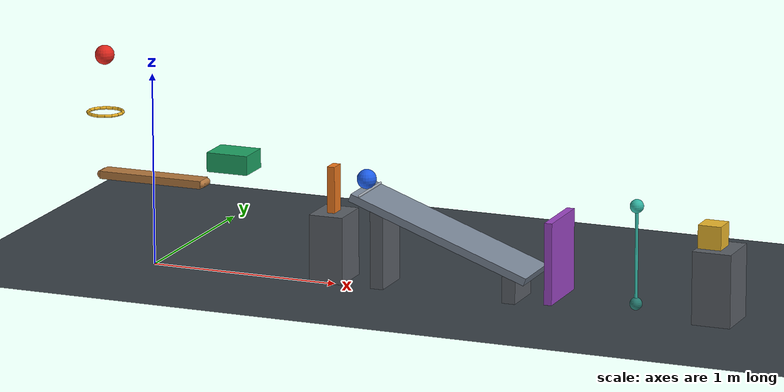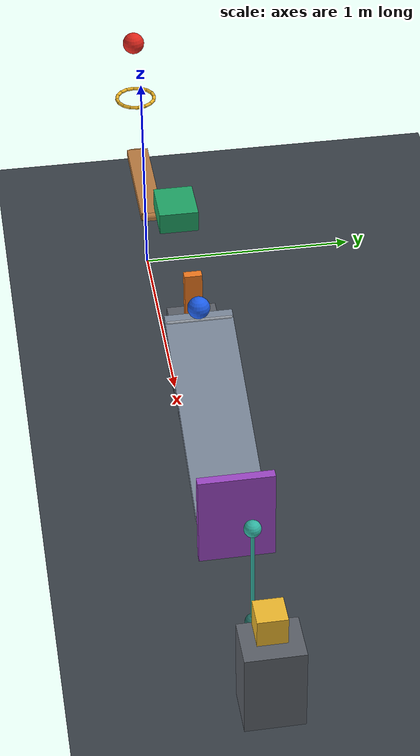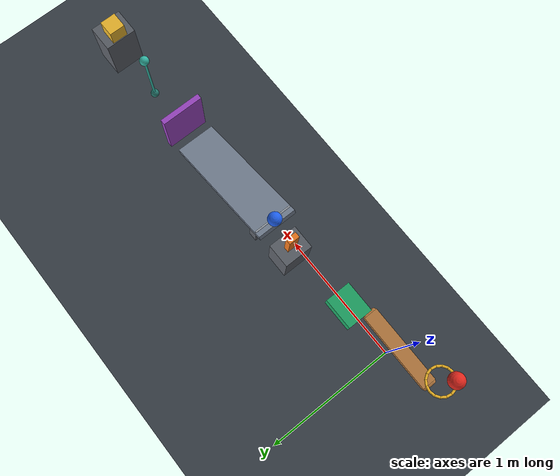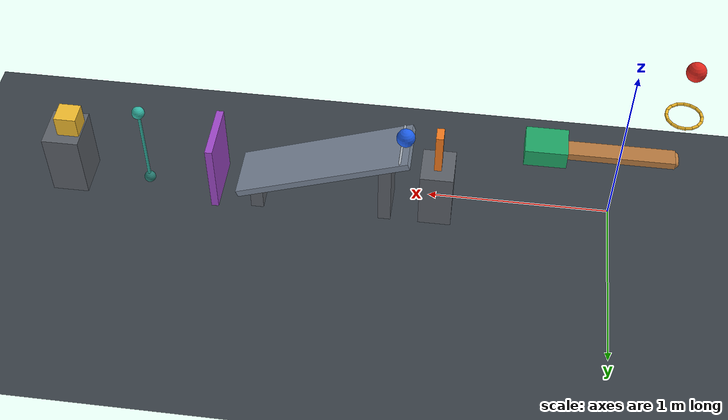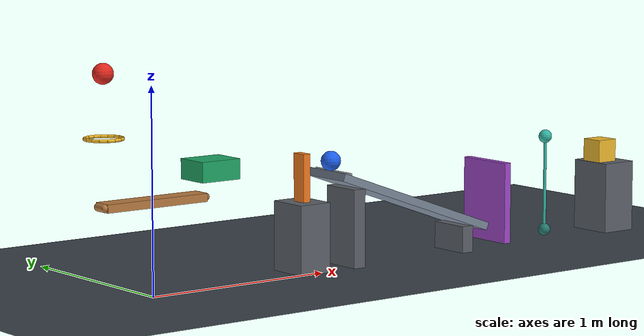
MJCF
<mujoco model="revised_gravity_chain_reaction">
  <compiler angle="degree" autolimits="true" inertiafromgeom="auto"/>
  <option timestep="0.002" gravity="0 0 -9.81" integrator="implicitfast" solver="Newton" cone="elliptic" iterations="100" tolerance="1e-10"/>

  <!-- Contact damping ratio 0.716 approximates restitution 0.04. -->
  <!-- Sliding friction is 0.72; torsional and rolling friction dissipate residual ball motion. -->
  <!-- All bodies start at rest. No actuators or prescribed motions are used. -->

  <visual>
    <headlight ambient="0.35 0.35 0.35" diffuse="0.7 0.7 0.7" specular="0.2 0.2 0.2"/>
  </visual>

  <worldbody>
    <light name="scene_light" pos="1 -2 4" dir="0 0 -1" directional="true"/>
    <camera name="overview" pos="1.4 -4.5 2.8" xyaxes="1 0 0 0 0.45 0.893"/>

    <geom name="floor" type="plane" pos="0 0 0" size="6 4 0.1" friction="0.72 0.005 0.002" condim="6" solref="0.008 0.716" solimp="0.95 0.99 0.001" rgba="0.22 0.25 0.28 1"/>

    <!-- Ball center starts 0.30 m above the ring plane.
         Initial lever contact occurs with its center 0.25 m below that plane. -->
    <body name="ball1" pos="-0.265 0 1.075">
      <freejoint name="ball1_free"/>
      <geom name="ball1_sphere" type="sphere" size="0.05" mass="0.20" friction="0.72 0.005 0.002" condim="6" solref="0.008 0.716" solimp="0.95 0.99 0.001" rgba="0.9 0.16 0.12 1"/>
    </body>

    <!-- Horizontal ring with approximately 0.160 m clear diameter. -->
    <body name="ring1" pos="-0.265 0 0.775">
      <geom name="ring1_segment00" type="capsule" fromto="0.089724 0 0 0.082894 0.034336 0" size="0.008" friction="0.72 0.005 0.002" condim="6" solref="0.008 0.716" solimp="0.95 0.99 0.001" rgba="0.95 0.72 0.15 1"/>
      <geom name="ring1_segment01" type="capsule" fromto="0.082894 0.034336 0 0.063444 0.063444 0" size="0.008" friction="0.72 0.005 0.002" condim="6" solref="0.008 0.716" solimp="0.95 0.99 0.001" rgba="0.95 0.72 0.15 1"/>
      <geom name="ring1_segment02" type="capsule" fromto="0.063444 0.063444 0 0.034336 0.082894 0" size="0.008" friction="0.72 0.005 0.002" condim="6" solref="0.008 0.716" solimp="0.95 0.99 0.001" rgba="0.95 0.72 0.15 1"/>
      <geom name="ring1_segment03" type="capsule" fromto="0.034336 0.082894 0 0 0.089724 0" size="0.008" friction="0.72 0.005 0.002" condim="6" solref="0.008 0.716" solimp="0.95 0.99 0.001" rgba="0.95 0.72 0.15 1"/>
      <geom name="ring1_segment04" type="capsule" fromto="0 0.089724 0 -0.034336 0.082894 0" size="0.008" friction="0.72 0.005 0.002" condim="6" solref="0.008 0.716" solimp="0.95 0.99 0.001" rgba="0.95 0.72 0.15 1"/>
      <geom name="ring1_segment05" type="capsule" fromto="-0.034336 0.082894 0 -0.063444 0.063444 0" size="0.008" friction="0.72 0.005 0.002" condim="6" solref="0.008 0.716" solimp="0.95 0.99 0.001" rgba="0.95 0.72 0.15 1"/>
      <geom name="ring1_segment06" type="capsule" fromto="-0.063444 0.063444 0 -0.082894 0.034336 0" size="0.008" friction="0.72 0.005 0.002" condim="6" solref="0.008 0.716" solimp="0.95 0.99 0.001" rgba="0.95 0.72 0.15 1"/>
      <geom name="ring1_segment07" type="capsule" fromto="-0.082894 0.034336 0 -0.089724 0 0" size="0.008" friction="0.72 0.005 0.002" condim="6" solref="0.008 0.716" solimp="0.95 0.99 0.001" rgba="0.95 0.72 0.15 1"/>
      <geom name="ring1_segment08" type="capsule" fromto="-0.089724 0 0 -0.082894 -0.034336 0" size="0.008" friction="0.72 0.005 0.002" condim="6" solref="0.008 0.716" solimp="0.95 0.99 0.001" rgba="0.95 0.72 0.15 1"/>
      <geom name="ring1_segment09" type="capsule" fromto="-0.082894 -0.034336 0 -0.063444 -0.063444 0" size="0.008" friction="0.72 0.005 0.002" condim="6" solref="0.008 0.716" solimp="0.95 0.99 0.001" rgba="0.95 0.72 0.15 1"/>
      <geom name="ring1_segment10" type="capsule" fromto="-0.063444 -0.063444 0 -0.034336 -0.082894 0" size="0.008" friction="0.72 0.005 0.002" condim="6" solref="0.008 0.716" solimp="0.95 0.99 0.001" rgba="0.95 0.72 0.15 1"/>
      <geom name="ring1_segment11" type="capsule" fromto="-0.034336 -0.082894 0 0 -0.089724 0" size="0.008" friction="0.72 0.005 0.002" condim="6" solref="0.008 0.716" solimp="0.95 0.99 0.001" rgba="0.95 0.72 0.15 1"/>
      <geom name="ring1_segment12" type="capsule" fromto="0 -0.089724 0 0.034336 -0.082894 0" size="0.008" friction="0.72 0.005 0.002" condim="6" solref="0.008 0.716" solimp="0.95 0.99 0.001" rgba="0.95 0.72 0.15 1"/>
      <geom name="ring1_segment13" type="capsule" fromto="0.034336 -0.082894 0 0.063444 -0.063444 0" size="0.008" friction="0.72 0.005 0.002" condim="6" solref="0.008 0.716" solimp="0.95 0.99 0.001" rgba="0.95 0.72 0.15 1"/>
      <geom name="ring1_segment14" type="capsule" fromto="0.063444 -0.063444 0 0.082894 -0.034336 0" size="0.008" friction="0.72 0.005 0.002" condim="6" solref="0.008 0.716" solimp="0.95 0.99 0.001" rgba="0.95 0.72 0.15 1"/>
      <geom name="ring1_segment15" type="capsule" fromto="0.082894 -0.034336 0 0.089724 0 0" size="0.008" friction="0.72 0.005 0.002" condim="6" solref="0.008 0.716" solimp="0.95 0.99 0.001" rgba="0.95 0.72 0.15 1"/>
    </body>

    <!-- Center-weighted lever with overall envelope 0.60 x 0.10 x 0.04 m. -->
    <body name="lever1" pos="0 0 0.455">
      <inertial pos="0 0 0" mass="0.50" diaginertia="0.0005 0.0060 0.0061"/>
      <joint name="lever1_hinge" type="hinge" axis="0 -1 0" range="0 45" damping="0.04" solreflimit="0.004 1" solimplimit="0.99 0.999 0.001"/>
      <geom name="lever1_bar" type="box" size="0.28 0.05 0.02" density="0" friction="0.72 0.005 0.002" condim="6" solref="0.008 0.716" solimp="0.95 0.99 0.001" rgba="0.72 0.48 0.25 1"/>
      <geom name="lever1_left_end" type="capsule" fromto="-0.28 -0.03 0 -0.28 0.03 0" size="0.02" density="0" friction="0.72 0.005 0.002" condim="6" solref="0.008 0.716" solimp="0.95 0.99 0.001" rgba="0.72 0.48 0.25 1"/>
      <geom name="lever1_right_end" type="capsule" fromto="0.28 -0.03 0 0.28 0.03 0" size="0.02" density="0" friction="0.72 0.005 0.002" condim="6" solref="0.008 0.716" solimp="0.95 0.99 0.001" rgba="0.72 0.48 0.25 1"/>
    </body>

    <!-- The rounded lever end strikes the cart's lower-left corner.
         The cart's bottom strikes domino1 approximately 0.164 m above its base. -->
    <body name="cart1" pos="0.40306668 0.10 0.56362149">
      <joint name="cart1_slide" type="slide" axis="1 0 0" range="0 0.50" damping="0.20" solreflimit="0.004 1" solimplimit="0.99 0.999 0.001"/>
      <geom name="cart1_box" type="box" size="0.11 0.09 0.05" mass="0.50" friction="0.72 0.005 0.002" condim="6" solref="0.008 0.716" solimp="0.95 0.99 0.001" rgba="0.12 0.65 0.40 1"/>
    </body>

    <body name="domino_support" pos="0.95306668 0.10 0.175">
      <geom name="domino_support_box" type="box" size="0.09 0.11 0.175" friction="0.72 0.005 0.002" condim="6" solref="0.008 0.716" solimp="0.95 0.99 0.001" rgba="0.36 0.38 0.41 1"/>
    </body>

    <!-- Domino dimensions are 0.04 m along travel, 0.08 m transverse, and 0.24 m vertical.
         Cart-to-domino face clearance is initially 0.42 m. -->
    <body name="domino1" pos="0.95306668 0.10 0.470">
      <freejoint name="domino1_free"/>
      <geom name="domino1_box" type="box" size="0.02 0.04 0.12" mass="0.25" friction="0.72 0.005 0.002" condim="6" solref="0.008 0.716" solimp="0.95 0.99 0.001" rgba="0.95 0.48 0.12 1"/>
    </body>

    <!-- Domino-to-ball center spacing along travel is 0.18 m. -->
    <body name="ball2" pos="1.13306668 0.10 0.536130">
      <freejoint name="ball2_free"/>
      <geom name="ball2_sphere" type="sphere" size="0.05" mass="0.20" friction="0.72 0.005 0.002" condim="6" solref="0.008 0.716" solimp="0.95 0.99 0.001" rgba="0.12 0.38 0.94 1"/>
    </body>

    <!-- Ramp surface is 1.00 m long, 0.30 m wide, and inclined at 20 degrees.
         Its low surface edge is x=2.04775930, z=0.15.
         The launch lip holds ball2 until domino contact. -->
    <body name="ramp1" pos="0 0 0">
      <geom name="ramp1_surface" type="box" pos="1.57107259 0.10 0.30221622" quat="0.984807753 0 0.173648178 0" size="0.50 0.15 0.02" friction="0.72 0.005 0.002" condim="6" solref="0.008 0.716" solimp="0.95 0.99 0.001" rgba="0.48 0.53 0.60 1"/>
      <geom name="ramp1_launch_lip" type="capsule" fromto="1.150570 -0.04 0.482935 1.150570 0.24 0.482935" size="0.006" friction="0.72 0.005 0.002" condim="6" solref="0.008 0.716" solimp="0.95 0.99 0.001" rgba="0.65 0.68 0.72 1"/>
      <geom name="ramp1_high_leg" type="box" pos="1.23 0.10 0.1985" size="0.035 0.11 0.1985" friction="0.72 0.005 0.002" condim="6" solref="0.008 0.716" solimp="0.95 0.99 0.001" rgba="0.36 0.38 0.41 1"/>
      <geom name="ramp1_low_leg" type="box" pos="1.94 0.10 0.069" size="0.035 0.11 0.069" friction="0.72 0.005 0.002" condim="6" solref="0.008 0.716" solimp="0.95 0.99 0.001" rgba="0.36 0.38 0.41 1"/>
    </body>

    <!-- Bottom-hinged, top-weighted panel: 0.42 m high, 0.32 m wide, 0.04 m thick.
         Its near face is 0.10 m beyond the ramp's low edge. -->
    <body name="door1" pos="2.16775930 0.10 0.030">
      <inertial pos="0 0 0.390" mass="0.45" diaginertia="0.0041 0.00035 0.0040"/>
      <joint name="door1_hinge" type="hinge" axis="0 1 0" range="0 70" damping="0.04" solreflimit="0.004 1" solimplimit="0.99 0.999 0.001"/>
      <geom name="door1_panel" type="box" pos="0 0 0.21" size="0.02 0.16 0.21" density="0" friction="0.72 0.005 0.002" condim="6" solref="0.008 0.716" solimp="0.95 0.99 0.001" rgba="0.62 0.28 0.78 1"/>
    </body>

    <body name="pendulum1" pos="2.57475930 0.10 0.040">
      <inertial pos="0 0 0.25" mass="0.35" diaginertia="0.00735 0.00735 0.00008"/>
      <joint name="pendulum1_hinge" type="hinge" axis="0 1 0" range="0 38" damping="0.04" solreflimit="0.004 1" solimplimit="0.99 0.999 0.001"/>
      <geom name="pendulum1_rod" type="capsule" fromto="0 0 0 0 0 0.50" size="0.008" density="0" friction="0.72 0.005 0.002" condim="6" solref="0.008 0.716" solimp="0.95 0.99 0.001" rgba="0.20 0.72 0.65 1"/>
      <geom name="pendulum1_hub" type="sphere" pos="0 0 0" size="0.032" density="0" friction="0.72 0.005 0.002" condim="6" solref="0.008 0.716" solimp="0.95 0.99 0.001" rgba="0.15 0.48 0.44 1"/>
      <geom name="pendulum1_striker" type="sphere" pos="0 0 0.50" size="0.035" density="0" friction="0.72 0.005 0.002" condim="6" solref="0.008 0.716" solimp="0.95 0.99 0.001" rgba="0.20 0.72 0.65 1"/>
    </body>

    <body name="block_support" pos="3.00714001 0.10 0.18700269">
      <geom name="block_support_box" type="box" size="0.10 0.12 0.18700269" friction="0.72 0.005 0.002" condim="6" solref="0.008 0.716" solimp="0.95 0.99 0.001" rgba="0.36 0.38 0.41 1"/>
    </body>

    <!-- Striker contact begins near 37.5 degrees, leaving a small stroke before the 38-degree stop. -->
    <body name="block1" pos="2.97414001 0.10 0.43400538">
      <freejoint name="block1_free"/>
      <geom name="block1_box" type="box" size="0.06 0.06 0.06" mass="0.35" friction="0.72 0.005 0.002" condim="6" solref="0.008 0.716" solimp="0.95 0.99 0.001" rgba="0.94 0.73 0.18 1"/>
    </body>
  </worldbody>

  <keyframe>
    <key name="start" time="0" qvel="0 0 0 0 0 0 0 0 0 0 0 0 0 0 0 0 0 0 0 0 0 0 0 0 0 0 0 0"/>
  </keyframe>
</mujoco>
